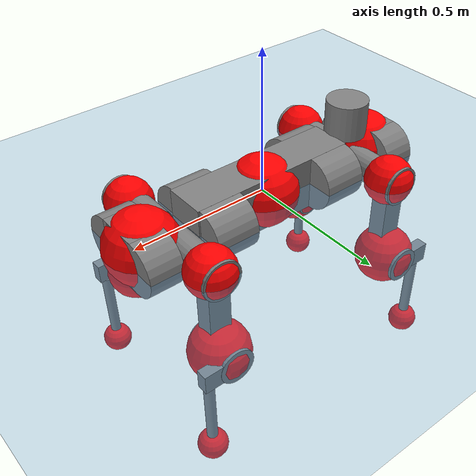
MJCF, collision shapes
<mujoco model="anymal_c">
  <compiler angle="radian" assetdir="assets" balanceinertia="true" inertiafromgeom="false"/>

  <option timestep="0.005" density="1.2" viscosity="2e-05"/>

  <size nkey="1"/>

  <visual>
    <quality shadowsize="8192"/>
    <map shadowclip="0.5"/>
  </visual>

  <default>
    <default class="/">
      <material specular="0" shininess="0.25"/>
      <geom contype="0" conaffinity="0" group="1" solref="-1000 -80"/>
      <site size="0.01 0.005 0.005" group="5"/>
      <general forcelimited="true" forcerange="-80 80" biastype="affine" gainprm="80" biasprm="0 -80 -2"/>
      <default class="anymal_c">
        <joint armature="0.01" damping="0.01" frictionloss="0.1"/>
        <default class="visual">
          <geom type="mesh" group="2"/>
          <default class="visual_zflip"/>
        </default>
        <default class="collision">
          <geom type="cylinder" group="3"/>
          <default class="foot">
            <geom size="0.03 0 0" type="sphere" condim="6" priority="1" friction="0.8 0.02 0.01" solimp="0.015 1 0.03"/>
          </default>
        </default>
      </default>
      <default class="reward_collision_sphere">
        <geom group="5" rgba="1 0 0 1"/>
      </default>
    </default>
  </default>

  <asset>
    <texture type="skybox" colorspace="auto" name="//unnamed_texture_0" builtin="gradient" rgb1="0.95 0.95 0.95" rgb2="0.95 0.95 0.95" width="100" height="600"/>
    <texture type="2d" colorspace="auto" name="texplane" builtin="checker" rgb1="0.345 0.575 0.748" rgb2="0.345 0.575 0.748" markrgb="1 1 1" width="512" height="512"/>
    <texture type="2d" colorspace="linear" name="base" file="base.png"/>
    <texture type="2d" colorspace="linear" name="top_shell" file="top_shell.png"/>
    <texture type="2d" colorspace="linear" name="bottom_shell" file="bottom_shell.png"/>
    <texture type="2d" colorspace="linear" name="remote" file="remote.png"/>
    <texture type="2d" colorspace="linear" name="hatch" file="hatch.png"/>
    <texture type="2d" colorspace="linear" name="handle" file="handle.png"/>
    <texture type="2d" colorspace="linear" name="face" file="face.png"/>
    <texture type="2d" colorspace="linear" name="battery" file="battery.png"/>
    <texture type="2d" colorspace="linear" name="lidar_cage" file="lidar_cage.png"/>
    <texture type="2d" colorspace="linear" name="depth_camera" file="depth_camera.png"/>
    <texture type="2d" colorspace="linear" name="wide_angle_camera" file="wide_angle_camera.png"/>
    <texture type="2d" colorspace="linear" name="lidar" file="lidar.png"/>
    <texture type="2d" colorspace="linear" name="drive" file="drive.png"/>
    <texture type="2d" colorspace="linear" name="hip_l" file="hip_l.png"/>
    <texture type="2d" colorspace="linear" name="shank_l" file="shank_l.png"/>
    <texture type="2d" colorspace="linear" name="foot" file="foot.png"/>
    <texture type="2d" colorspace="linear" name="thigh" file="thigh.png"/>
    <texture type="2d" colorspace="linear" name="shank_r" file="shank_r.png"/>
    <texture type="2d" colorspace="linear" name="hip_r" file="hip_r.png"/>
    <material name="MatPlane" class="/" texture="texplane" texuniform="true" texrepeat="2 2" specular="0.9" shininess="0.5"/>
    <material name="black_plastic" class="/" rgba="0.007 0.007 0.007 1"/>
    <material name="green" class="/" rgba="0.052 0.178 0.033 1"/>
    <material name="red" class="/" rgba="0.178 0.006 0.005 1"/>
    <material name="yellow" class="/" rgba="0.178 0.119 0.006 1"/>
    <material name="lwl" class="/" rgba="0.8 0.8 0.8 1"/>
    <material name="base" class="/" texture="base"/>
    <material name="top_shell" class="/" texture="top_shell"/>
    <material name="bottom_shell" class="/" texture="bottom_shell"/>
    <material name="hip_l" class="/" texture="hip_l"/>
    <material name="thigh" class="/" texture="thigh"/>
    <material name="shank_l" class="/" texture="shank_l"/>
    <material name="foot" class="/" texture="foot"/>
    <material name="hip_r" class="/" texture="hip_r"/>
    <material name="shank" class="/" texture="shank_r"/>
    <material name="hatch" class="/" texture="hatch"/>
    <material name="remote" class="/" texture="remote"/>
    <material name="handle" class="/" texture="handle"/>
    <material name="face" class="/" texture="face"/>
    <material name="depth_camera" class="/" texture="depth_camera"/>
    <material name="wide_angle_camera" class="/" texture="wide_angle_camera"/>
    <material name="battery" class="/" texture="battery"/>
    <material name="lidar_cage" class="/" texture="lidar_cage"/>
    <material name="lidar" class="/" texture="lidar"/>
    <material name="drive" class="/" texture="drive"/>
    <mesh name="base_0" class="/" file="base_0.obj"/>
    <mesh name="base_1" class="/" file="base_1.obj"/>
    <mesh name="base_2" class="/" file="base_2.obj"/>
    <mesh name="base_3" class="/" file="base_3.obj"/>
    <mesh name="base_4" class="/" file="base_4.obj"/>
    <mesh name="base_5" class="/" file="base_5.obj"/>
    <mesh name="top_shell" class="/" file="top_shell.obj"/>
    <mesh name="bottom_shell" class="/" file="bottom_shell.obj"/>
    <mesh name="remote" class="/" file="remote.obj"/>
    <mesh name="handle" class="/" file="handle.obj"/>
    <mesh name="face" class="/" file="face.obj"/>
    <mesh name="wide_angle_camera" class="/" file="wide_angle_camera.obj"/>
    <mesh name="depth_camera" class="/" file="depth_camera.obj"/>
    <mesh name="battery" class="/" file="battery.obj"/>
    <mesh name="lidar_cage" class="/" file="lidar_cage.obj"/>
    <mesh name="lidar" class="/" file="lidar.obj"/>
    <mesh name="drive" class="/" file="drive.obj"/>
    <mesh name="hip_l" class="/" file="hip_l.obj"/>
    <mesh name="thigh" class="/" file="thigh.obj"/>
    <mesh name="shank_l" class="/" file="shank_l.obj"/>
    <mesh name="foot" class="/" file="foot.obj"/>
    <mesh name="hip_r" class="/" file="hip_r.obj"/>
    <mesh name="hatch" class="/" file="hatch.obj"/>
    <mesh name="shank_r" class="/" file="shank_r.obj"/>
  </asset>

  <worldbody>
    <geom name="floor" class="/" size="100 100 0.125" type="plane" group="0" material="MatPlane"/>
    <light name="toplight_shadow" class="/" pos="0 0 5" dir="0.0990148 0.0990148 -0.990148" type="directional" ambient="0.04 0.04 0.04" diffuse="0.55 0.55 0.55" specular="0.12 0.12 0.12"/>
    <light name="toplight_fill" class="/" pos="0 0 5" dir="0.0990148 0.0990148 -0.990148" type="directional" castshadow="false" ambient="0.04 0.04 0.04" diffuse="0.3 0.3 0.3" specular="0.08 0.08 0.08"/>
    <body name="trunk" childclass="anymal_c" pos="-0.000263119 -0.00279135 -0.000985772" quat="1 1.24715e-07 1.95358e-06 -4.88842e-06">
      <inertial pos="0.00271679 -0.0026882 0.0547599" quat="0.495779 0.498926 0.502226 0.503036" mass="22.5794" diaginertia="0.761291 0.847769 0.333988"/>
      <joint name="//unnamed_joint_0" type="free" armature="0" damping="0" frictionloss="0"/>
      <geom name="//unnamed_geom_1" class="visual" material="green" mesh="base_0"/>
      <geom name="//unnamed_geom_2" class="visual" material="yellow" mesh="base_1"/>
      <geom name="//unnamed_geom_3" class="visual" material="red" mesh="base_2"/>
      <geom name="//unnamed_geom_4" class="visual" material="black_plastic" mesh="base_3"/>
      <geom name="//unnamed_geom_5" class="visual" material="lwl" mesh="base_4"/>
      <geom name="//unnamed_geom_6" class="visual" material="base" mesh="base_5"/>
      <geom name="trunk_1" class="collision" size="0.310434 0.0749324 0.0963416" type="box"/>
      <geom name="trunk_2" class="collision" size="0.0963416 0.0776085" pos="0.22729 0.0751098 0" quat="0.707107 0 0.707107 0"/>
      <geom name="trunk_3" class="collision" size="0.0963416 0.0776085" pos="-0.22729 0.0751098 0" quat="0.707107 0 0.707107 0"/>
      <geom name="trunk_4" class="collision" size="0.0963416 0.0776085" pos="0.22729 -0.0751098 0" quat="0.707107 0 0.707107 0"/>
      <geom name="trunk_5" class="collision" size="0.0963416 0.0776085" pos="-0.22729 -0.0751098 0" quat="0.707107 0 0.707107 0"/>
      <geom name="//unnamed_geom_12" class="visual" material="top_shell" mesh="top_shell"/>
      <geom name="//unnamed_geom_13" class="visual" material="bottom_shell" mesh="bottom_shell"/>
      <geom name="//unnamed_geom_14" class="visual" material="remote" mesh="remote"/>
      <geom name="//unnamed_geom_15" class="visual" material="handle" mesh="handle"/>
      <geom name="//unnamed_geom_16" class="visual" pos="0.433156 0 0" quat="1 0 0 0" material="face" mesh="face"/>
      <geom name="trunk_6" class="collision" size="0.0588754 0.0749324 0.0963416" pos="0.490632 0 0" type="box"/>
      <geom name="//unnamed_geom_18" class="collision" size="0.0963416 0.0588754" pos="0.490632 0.0751098 0" quat="0.707107 0 0.707107 0"/>
      <geom name="//unnamed_geom_19" class="collision" size="0.0963416 0.0588754" pos="0.490632 -0.0751098 0" quat="0.707107 0 0.707107 0"/>
      <geom name="//unnamed_geom_20" class="visual" pos="0.482431 0 -0.0322943" quat="0.965926 0 0.258819 0" material="depth_camera" mesh="depth_camera"/>
      <geom name="//unnamed_geom_21" class="visual" pos="0.53609 0 0.0163679" material="wide_angle_camera" mesh="wide_angle_camera"/>
      <geom name="//unnamed_geom_22" class="visual_zflip" pos="-0.433156 0 0" quat="0 0 0 1" material="face" mesh="face"/>
      <geom name="trunk_7" class="collision" size="0.0588754 0.0749324 0.0963416" pos="-0.490632 0 0" quat="0 0 0 1" type="box"/>
      <geom name="//unnamed_geom_24" class="collision" size="0.0963416 0.0588754" pos="-0.490632 -0.0751098 0" quat="0 -0.707107 0 0.707107"/>
      <geom name="//unnamed_geom_25" class="collision" size="0.0963416 0.0588754" pos="-0.490632 0.0751098 0" quat="0 -0.707107 0 0.707107"/>
      <geom name="//unnamed_geom_26" class="visual" pos="-0.482431 0 -0.0322943" quat="0 -0.258819 0 0.965926" material="depth_camera" mesh="depth_camera"/>
      <geom name="//unnamed_geom_27" class="visual_zflip" pos="-0.53609 0 0.0163679" quat="0 0 0 1" material="wide_angle_camera" mesh="wide_angle_camera"/>
      <geom name="//unnamed_geom_28" class="visual" material="battery" mesh="battery"/>
      <geom name="//unnamed_geom_29" class="visual" pos="0 0.0824106 0.0313951" quat="0.683013 -0.183013 0.183013 0.683013" material="depth_camera" mesh="depth_camera"/>
      <geom name="//unnamed_geom_30" class="visual" pos="0 -0.0824106 0.0313951" quat="0.683013 0.183013 0.183013 -0.683013" material="depth_camera" mesh="depth_camera"/>
      <geom name="//unnamed_geom_31" class="visual" pos="-0.380383 0 0.0803634" quat="1 0 0 0" material="lidar_cage" mesh="lidar_cage"/>
      <geom name="trunk_8" class="collision" size="0.0749324 0.0642277" pos="-0.380383 0 0.145966"/>
      <geom name="//unnamed_geom_33" class="visual" pos="-0.380383 1.09956e-05 0.155479" quat="0.707107 0 0 -0.707107" material="lidar" mesh="lidar"/>
      <geom name="//unnamed_geom_34" class="visual" pos="0.313398 0.111599 -3.5161e-10" quat="0.258819 0.965926 0 0" material="drive" mesh="drive"/>
      <geom name="//unnamed_geom_35" class="visual" pos="0.313398 -0.111599 3.5161e-10" quat="0.258819 -0.965926 0 0" material="drive" mesh="drive"/>
      <geom name="//unnamed_geom_36" class="visual" pos="-0.313398 0.111599 3.5161e-10" quat="0 0 0.965926 -0.258819" material="drive" mesh="drive"/>
      <geom name="//unnamed_geom_37" class="visual" pos="-0.313398 -0.111599 -3.5161e-10" quat="0 0 -0.965926 -0.258819" material="drive" mesh="drive"/>
      <geom name="//unnamed_geom_38" class="visual" pos="0.121221 0 0.0798167" quat="1 0 0 0" material="hatch" mesh="hatch"/>
      <geom name="//unnamed_geom_39" class="reward_collision_sphere" size="0.128455"/>
      <geom name="//unnamed_geom_40" class="reward_collision_sphere" size="0.128455" pos="0.470254 0 0"/>
      <geom name="//unnamed_geom_41" class="reward_collision_sphere" size="0.128455" pos="-0.470254 0 0"/>
      <site name="imu" pos="0.274106 0.021745 0.0366359" size="0.0107046"/>
      <camera name="track" pos="0 -2.14599 0" quat="0.707107 0.707107 0 0" mode="trackcom"/>
      <camera name="ego_camera" pos="0.470254 0 -0.0437352" quat="-0.5 -0.5 0.5 0.5"/>
      <body name="LF_HIP" pos="0.316629 0.113145 0.00236608" quat="0.260078 0.965588 0.000216479 -0.000194391">
        <inertial pos="0.0602414 -0.0163431 -0.00680223" quat="-0.125822 0.713308 -0.134852 0.676148" mass="3.2858" diaginertia="0.00729112 0.00668963 0.00512004"/>
        <joint name="LF_HAA" pos="0 0 0" axis="1 -0.000775605 -6.76988e-05" stiffness="0.00627454" range="-0.696394 0.533939" armature="0.0108679" damping="0" frictionloss="0.122031"/>
        <geom name="//unnamed_geom_42" class="visual" pos="0 -2.06836e-05 3.39727e-06" quat="0.258819 -0.965926 0 0" material="hip_l" mesh="hip_l"/>
        <geom name="//unnamed_geom_43" class="visual" pos="0.0625961 -0.0762242 -0.0441588" quat="0.183013 -0.683013 0.683013 0.183013" material="drive" mesh="drive"/>
        <geom name="//unnamed_geom_44" class="collision" size="0.0535231 0.0749324" pos="0.0625961 -0.0128328 -0.00754979" quat="-0.353553 -0.612372 0.612372 -0.353553"/>
        <body name="LF_THIGH" pos="0.0628863 -0.0767233 -0.0455864" quat="0.183913 -0.68351 0.682131 0.183538">
          <inertial pos="0.0352031 0.00271098 -0.269441" quat="0.994286 -0.011461 -0.0715671 0.078377" mass="3.76501" diaginertia="0.0370335 0.0422112 0.00645451"/>
          <joint name="LF_HFE" pos="0 0 0" axis="0.999913 -0.0105969 0.00783039" range="-3.10539 3.18197" armature="0.0121503" damping="0.0064813" frictionloss="0.114385"/>
          <geom name="//unnamed_geom_45" class="visual" pos="-0.000556846 -8.77459e-07 0" quat="0.707107 0 0 -0.707107" material="thigh" mesh="thigh"/>
          <geom name="//unnamed_geom_46" class="collision" size="0.06958 0.0428185" pos="0.0418004 0 0" quat="0.5 0.5 -0.5 -0.5"/>
          <geom name="//unnamed_geom_47" class="collision" size="0.0401423 0.0321139 0.151271" pos="0.0313503 0 -0.15451" quat="0.707107 0 0 -0.707107" type="box"/>
          <geom name="//unnamed_geom_48" class="visual" pos="0.104814 0 -0.311613" quat="1 0 0 0" material="drive" mesh="drive"/>
          <geom name="//unnamed_geom_49" class="collision" size="0.0535231 0.0749324" pos="0.0316638 0 -0.311613" quat="0.707107 0 0.707107 0"/>
          <geom name="//unnamed_geom_50" class="reward_collision_sphere" size="0.085637" pos="0.0261252 0 0"/>
          <body name="LF_SHANK" pos="0.103914 -0.00222507 -0.313772" quat="0.999999 0.00116198 -0.000332526 0.000431706">
            <inertial pos="0.00851888 -0.0657661 -0.0897983" quat="0.992837 -0.116631 -0.000563779 -0.0259162" mass="0.734365" diaginertia="0.0122736 0.0135146 0.00171727"/>
            <joint name="LF_KFE" pos="0 0 0" axis="0.999989 -0.000691008 -0.00470693" range="-3.17372 3.14982" armature="0.00923737" damping="0.00979012" frictionloss="0.108679"/>
            <geom name="//unnamed_geom_51" class="visual" pos="-0.000181575 -0.000968169 0" quat="0.707107 0 0 -0.707107" material="shank_l" mesh="shank_l"/>
            <geom name="LF_kfe_act" class="collision" size="0.0642277 0.0214092" pos="0.0209002 0 0" quat="0.5 0.5 -0.5 -0.5"/>
            <geom name="//unnamed_geom_53" class="collision" size="0.0615505 0.0361281 0.0203388" pos="0.0209002 -0.0616963 0" quat="0.5 0.5 -0.5 -0.5" type="box"/>
            <geom name="//unnamed_geom_54" class="visual" pos="0.0136374 -0.0946821 -0.36953" quat="0.382683 0 0 -0.92388" material="foot" mesh="foot"/>
            <geom name="LF_calf" class="collision" size="0.0187331 0.151205" pos="0.0136374 -0.0943701 -0.184765" quat="0.707107 0 0 -0.707107"/>
            <geom name="LF_foot" class="foot" size="0.0303274" pos="0.0136374 -0.0943701 -0.344929" quat="0.707107 0 0 -0.707107"/>
            <geom name="//unnamed_geom_57" class="reward_collision_sphere" size="0.107046" pos="-0.0522505 0 0"/>
            <geom name="//unnamed_geom_58" class="reward_collision_sphere" size="0.0535231" pos="0.0136374 -0.0943701 -0.344929"/>
            <site name="LF_foot" class="foot" pos="0.0136374 -0.0943701 -0.344929" quat="0.707107 0 0 -0.707107" size="0.0107046"/>
          </body>
        </body>
      </body>
      <body name="RF_HIP" pos="0.313371 -0.113816 -0.00144469" quat="0.258792 -0.965933 0.000110002 -0.000385796">
        <inertial pos="0.0581972 0.0166498 -0.00929618" quat="0.136908 0.680768 0.128465 0.708031" mass="3.26723" diaginertia="0.00715608 0.00682018 0.00525694"/>
        <joint name="RF_HAA" pos="0 0 0" axis="0.999877 -0.0109067 0.011279" range="-0.493028 0.716596" armature="0.0110079" damping="0.0134515" frictionloss="0.113007"/>
        <geom name="//unnamed_geom_59" class="visual" pos="0 2.06835e-05 3.39726e-06" quat="0.258819 0.965926 0 0" material="hip_r" mesh="hip_r"/>
        <geom name="//unnamed_geom_60" class="visual" pos="0.0625961 0.0762242 -0.0441588" quat="0.183013 0.683013 0.683013 -0.183013" material="drive" mesh="drive"/>
        <geom name="//unnamed_geom_61" class="collision" size="0.0535231 0.0749324" pos="0.0625961 0.0128328 -0.00754979" quat="-0.353553 0.612372 0.612372 0.353553"/>
        <body name="RF_THIGH" pos="0.0648461 0.0786932 -0.0434411" quat="0.183374 0.683968 0.682046 -0.18269">
          <inertial pos="0.0301063 -0.00141323 -0.267905" quat="0.992262 -0.0114569 -0.0745097 0.0986541" mass="4.02944" diaginertia="0.038509 0.044034 0.006633"/>
          <joint name="RF_HFE" pos="0 0 0" axis="0.999964 -0.00335448 0.00773462" range="-3.18284 3.13768" armature="0.0101407" damping="0.0114444" frictionloss="0.10761"/>
          <geom name="//unnamed_geom_62" class="visual" pos="-0.000556846 -8.77459e-07 0" quat="0.707107 0 0 -0.707107" material="thigh" mesh="thigh"/>
          <geom name="//unnamed_geom_63" class="collision" size="0.06958 0.0428185" pos="0.0418004 0 0" quat="0.5 0.5 0.5 0.5"/>
          <geom name="//unnamed_geom_64" class="collision" size="0.0401423 0.0321139 0.151271" pos="0.0313503 0 -0.15451" quat="0.707107 0 0 0.707107" type="box"/>
          <geom name="//unnamed_geom_65" class="visual" pos="0.104814 0 -0.311613" quat="1 0 0 0" material="drive" mesh="drive"/>
          <geom name="//unnamed_geom_66" class="collision" size="0.0535231 0.0749324" pos="0.0316638 0 -0.311613" quat="0.707107 0 0.707107 0"/>
          <geom name="//unnamed_geom_67" class="reward_collision_sphere" size="0.085637" pos="0.0261252 0 0"/>
          <body name="RF_SHANK" pos="0.102625 -0.00158799 -0.314032" quat="0.999999 -0.000323575 0.0012231 0.000338877">
            <inertial pos="0.00744549 0.065757 -0.0851771" quat="0.99184 0.121926 0.00164797 0.0372001" mass="0.712929" diaginertia="0.0126245 0.0131109 0.00176601"/>
            <joint name="RF_KFE" pos="0 0 0" axis="0.999955 -0.00732912 -0.00605586" range="-3.14537 3.14685" armature="0.011751" damping="0.0207318" frictionloss="0.0933174"/>
            <geom name="//unnamed_geom_68" class="visual" pos="-0.000181574 0.000968167 0" quat="0.707107 0 0 0.707107" material="shank" mesh="shank_r"/>
            <geom name="RF_kfe_act" class="collision" size="0.0642277 0.0214092" pos="0.0209002 0 0" quat="0.5 0.5 0.5 0.5"/>
            <geom name="//unnamed_geom_70" class="collision" size="0.0615505 0.0361281 0.0203388" pos="0.0209002 0.0616963 0" quat="0.5 0.5 0.5 0.5" type="box"/>
            <geom name="//unnamed_geom_71" class="visual" pos="0.0136373 0.0946821 -0.36953" quat="0.382683 0 0 0.92388" material="foot" mesh="foot"/>
            <geom name="RF_calf" class="collision" size="0.0187331 0.151205" pos="0.0136374 0.0943701 -0.184765" quat="0.707107 0 0 0.707107"/>
            <geom name="RF_foot" class="foot" size="0.0257395" pos="0.0136374 0.0943701 -0.344929" quat="0.707107 0 0 0.707107"/>
            <geom name="//unnamed_geom_74" class="reward_collision_sphere" size="0.107046" pos="-0.0522505 0 0"/>
            <geom name="//unnamed_geom_75" class="reward_collision_sphere" size="0.0535231" pos="0.0136374 0.0943701 -0.344929"/>
            <site name="RF_foot" class="foot" pos="0.0136374 0.0943701 -0.344929" quat="0.707107 0 0 0.707107" size="0.0107046"/>
          </body>
        </body>
      </body>
      <body name="LH_HIP" pos="-0.313808 0.111861 0.00141274" quat="-0.000839584 -0.000152078 0.965915 -0.258858">
        <inertial pos="0.0599058 0.0135837 -0.00668838" quat="0.137453 0.678049 0.128583 0.710509" mass="3.50621" diaginertia="0.00744609 0.00713917 0.00522342"/>
        <joint name="LH_HAA" pos="0 0 0" axis="0.999999 0.00030937 0.00169341" range="-0.501614 0.691365" armature="0.0106652" damping="0.00515169" frictionloss="0.104109"/>
        <geom name="//unnamed_geom_76" class="visual" pos="0 2.06835e-05 3.39726e-06" quat="-0.258819 -0.965926 0 0" material="hip_r" mesh="hip_r"/>
        <geom name="//unnamed_geom_77" class="visual" pos="0.0625961 0.0762242 -0.0441588" quat="0.183013 0.683013 0.683013 -0.183013" material="drive" mesh="drive"/>
        <geom name="//unnamed_geom_78" class="collision" size="0.0535231 0.0749324" pos="0.0625961 0.0128328 -0.00754979" quat="-0.353553 0.612372 0.612372 0.353553"/>
        <body name="LH_THIGH" pos="0.0591349 0.0800125 -0.0467238" quat="0.182886 0.68305 0.683003 -0.183037">
          <inertial pos="0.0327294 0.00103263 -0.270404" quat="0.992081 -0.0166083 -0.0808323 0.0946856" mass="3.88729" diaginertia="0.0382137 0.0441432 0.00672691"/>
          <joint name="LH_HFE" pos="0 0 0" axis="0.999993 -0.000306783 0.00368108" stiffness="0.00184519" range="-3.19795 3.19395" armature="0.00999116" damping="0" frictionloss="0.112531"/>
          <geom name="//unnamed_geom_79" class="visual" pos="-0.000556846 -8.77459e-07 0" quat="0.707107 0 0 -0.707107" material="thigh" mesh="thigh"/>
          <geom name="//unnamed_geom_80" class="collision" size="0.06958 0.0428185" pos="0.0418004 0 0" quat="0.5 0.5 -0.5 -0.5"/>
          <geom name="//unnamed_geom_81" class="collision" size="0.0401423 0.0321139 0.151271" pos="0.0313503 0 -0.15451" quat="0.707107 0 0 -0.707107" type="box"/>
          <geom name="//unnamed_geom_82" class="visual" pos="0.104814 0 -0.311613" quat="1 0 0 0" material="drive" mesh="drive"/>
          <geom name="//unnamed_geom_83" class="collision" size="0.0535231 0.0749324" pos="0.0316638 0 -0.311613" quat="0.707107 0 0.707107 0"/>
          <geom name="//unnamed_geom_84" class="reward_collision_sphere" size="0.085637" pos="0.0261252 0 0"/>
          <body name="LH_SHANK" pos="0.102186 -0.000956687 -0.310816" quat="1 2.04593e-05 -8.88395e-05 -8.16842e-05">
            <inertial pos="0.00672153 0.0658866 -0.0871043" quat="0.993221 0.113405 -0.00167316 0.0254715" mass="0.770883" diaginertia="0.0134942 0.0136759 0.00180013"/>
            <joint name="LH_KFE" pos="0 0 0" axis="0.99985 -0.000500495 -0.0173108" range="-3.11199 3.08426" armature="0.0107687" damping="0" frictionloss="0.10483"/>
            <geom name="//unnamed_geom_85" class="visual" pos="-0.000181574 0.000968167 0" quat="-0.707107 0 0 -0.707107" material="shank" mesh="shank_r"/>
            <geom name="LH_kfe_act" class="collision" size="0.0642277 0.0214092" pos="0.0209002 0 0" quat="0.5 0.5 -0.5 -0.5"/>
            <geom name="//unnamed_geom_87" class="collision" size="0.0615505 0.0361281 0.0203388" pos="0.0209002 0.0616963 0" quat="0.5 0.5 -0.5 -0.5" type="box"/>
            <geom name="//unnamed_geom_88" class="visual" pos="0.0136373 0.0946821 -0.36953" quat="-0.382683 0 0 -0.92388" material="foot" mesh="foot"/>
            <geom name="LH_calf" class="collision" size="0.0187331 0.151205" pos="0.0136374 0.0943701 -0.184765" quat="0.707107 0 0 -0.707107"/>
            <geom name="LH_foot" class="foot" size="0.0349588" pos="0.0136374 0.0943701 -0.344929" quat="0.707107 0 0 -0.707107"/>
            <geom name="//unnamed_geom_91" class="reward_collision_sphere" size="0.107046" pos="-0.0522505 0 0"/>
            <geom name="//unnamed_geom_92" class="reward_collision_sphere" size="0.0535231" pos="0.0136374 0.0943701 -0.344929"/>
            <site name="LH_foot" class="foot" pos="0.0136374 0.0943701 -0.344929" quat="0.707107 0 0 -0.707107" size="0.0107046"/>
          </body>
        </body>
      </body>
      <body name="RH_HIP" pos="-0.313086 -0.110181 -0.000902801" quat="-4.00725e-05 0.00116479 -0.965769 -0.259403">
        <inertial pos="0.0594479 -0.0139146 -0.0120547" quat="-0.127978 0.709783 -0.135277 0.67936" mass="3.5046" diaginertia="0.00779886 0.0073418 0.0054493"/>
        <joint name="RH_HAA" pos="0 0 0" axis="0.999934 0.00845592 -0.00775237" stiffness="0.000261963" range="-0.702743 0.448214" armature="0.0107034" damping="0.0126947" frictionloss="0.101456"/>
        <geom name="//unnamed_geom_93" class="visual" pos="0 -2.06836e-05 3.39727e-06" quat="-0.258819 0.965926 0 0" material="hip_l" mesh="hip_l"/>
        <geom name="//unnamed_geom_94" class="visual" pos="0.0625961 -0.0762242 -0.0441588" quat="-0.183013 0.683013 -0.683013 -0.183013" material="drive" mesh="drive"/>
        <geom name="//unnamed_geom_95" class="collision" size="0.0535231 0.0749324" pos="0.0625961 -0.0128328 -0.00754979" quat="0.353553 0.612372 -0.612372 0.353553"/>
        <body name="RH_THIGH" pos="0.0620887 -0.07522 -0.0443719" quat="-0.181968 0.683216 -0.683171 -0.182702">
          <inertial pos="0.0324251 -0.00221226 -0.265766" quat="0.99318 -0.00606625 -0.0813763 0.0832753" mass="3.62387" diaginertia="0.0360091 0.041056 0.00632846"/>
          <joint name="RH_HFE" pos="0 0 0" axis="0.999939 -0.00450958 0.0101077" range="-3.15392 3.19711" armature="0.0109897" damping="0.00992414" frictionloss="0.103327"/>
          <geom name="//unnamed_geom_96" class="visual" pos="-0.000556846 -8.77459e-07 0" quat="0.707107 0 0 -0.707107" material="thigh" mesh="thigh"/>
          <geom name="//unnamed_geom_97" class="collision" size="0.06958 0.0428185" pos="0.0418004 0 0" quat="0.5 0.5 0.5 0.5"/>
          <geom name="//unnamed_geom_98" class="collision" size="0.0401423 0.0321139 0.151271" pos="0.0313503 0 -0.15451" quat="0.707107 0 0 0.707107" type="box"/>
          <geom name="//unnamed_geom_99" class="visual" pos="0.104814 0 -0.311613" quat="1 0 0 0" material="drive" mesh="drive"/>
          <geom name="//unnamed_geom_100" class="collision" size="0.0535231 0.0749324" pos="0.0316638 0 -0.311613" quat="0.707107 0 0.707107 0"/>
          <geom name="//unnamed_geom_101" class="reward_collision_sphere" size="0.085637" pos="0.0261252 0 0"/>
          <body name="RH_SHANK" pos="0.104098 -0.000271055 -0.312648" quat="0.999999 -0.000747662 -0.00033133 -0.000656897">
            <inertial pos="0.00689738 -0.0655188 -0.0887491" quat="0.993396 -0.110803 0.00142417 -0.0297668" mass="0.732959" diaginertia="0.0131014 0.0131335 0.00174999"/>
            <joint name="RH_KFE" pos="0 0 0" axis="0.99996 0.00530076 0.00723713" range="-3.18359 3.17813" armature="0.00944104" damping="0.00923203" frictionloss="0.109895"/>
            <geom name="//unnamed_geom_102" class="visual" pos="-0.000181575 -0.000968169 0" quat="0.707107 0 0 -0.707107" material="shank_l" mesh="shank_l"/>
            <geom name="RH_kfe_act" class="collision" size="0.0642277 0.0214092" pos="0.0209002 0 0" quat="0.5 0.5 0.5 0.5"/>
            <geom name="//unnamed_geom_104" class="collision" size="0.0615505 0.0361281 0.0203388" pos="0.0209002 -0.0616963 0" quat="0.5 0.5 0.5 0.5" type="box"/>
            <geom name="//unnamed_geom_105" class="visual" pos="0.0136374 -0.0946821 -0.36953" quat="0.382683 0 0 -0.92388" material="foot" mesh="foot"/>
            <geom name="RH_calf" class="collision" size="0.0187331 0.151205" pos="0.0136374 -0.0943701 -0.184765" quat="0.707107 0 0 0.707107"/>
            <geom name="RH_foot" class="foot" size="0.028124" pos="0.0136374 -0.0943701 -0.344929" quat="0.707107 0 0 0.707107"/>
            <geom name="//unnamed_geom_108" class="reward_collision_sphere" size="0.107046" pos="-0.0522505 0 0"/>
            <geom name="//unnamed_geom_109" class="reward_collision_sphere" size="0.0535231" pos="0.0136374 -0.0943701 -0.344929"/>
            <site name="RH_foot" class="foot" pos="0.0136374 -0.0943701 -0.344929" quat="0.707107 0 0 0.707107" size="0.0107046"/>
          </body>
        </body>
      </body>
    </body>
  </worldbody>

  <contact>
    <pair class="/" geom1="floor" geom2="LF_foot" name="//unnamed_contact_0"/>
    <pair class="/" geom1="floor" geom2="RF_foot" name="//unnamed_contact_1"/>
    <pair class="/" geom1="floor" geom2="LH_foot" name="//unnamed_contact_2"/>
    <pair class="/" geom1="floor" geom2="RH_foot" name="//unnamed_contact_3"/>
  </contact>

  <actuator>
    <general name="LF_HAA" class="/" joint="LF_HAA" forcerange="-89.371 89.371" gainprm="90.4878" biasprm="0 -90.4878 -2.26007"/>
    <general name="LF_HFE" class="/" joint="LF_HFE" forcerange="-76.7555 76.7555" gainprm="90.4878" biasprm="0 -90.4878 -2.26007"/>
    <general name="LF_KFE" class="/" joint="LF_KFE" forcerange="-86.8944 86.8944" gainprm="90.4878" biasprm="0 -90.4878 -2.26007"/>
    <general name="RF_HAA" class="/" joint="RF_HAA" forcerange="-92.59 92.59" gainprm="90.4878" biasprm="0 -90.4878 -2.26007"/>
    <general name="RF_HFE" class="/" joint="RF_HFE" forcerange="-93.2391 93.2391" gainprm="90.4878" biasprm="0 -90.4878 -2.26007"/>
    <general name="RF_KFE" class="/" joint="RF_KFE" forcerange="-95.2329 95.2329" gainprm="90.4878" biasprm="0 -90.4878 -2.26007"/>
    <general name="LH_HAA" class="/" joint="LH_HAA" forcerange="-88.3082 88.3082" gainprm="90.4878" biasprm="0 -90.4878 -2.26007"/>
    <general name="LH_HFE" class="/" joint="LH_HFE" forcerange="-84.3881 84.3881" gainprm="90.4878" biasprm="0 -90.4878 -2.26007"/>
    <general name="LH_KFE" class="/" joint="LH_KFE" forcerange="-79.5374 79.5374" gainprm="90.4878" biasprm="0 -90.4878 -2.26007"/>
    <general name="RH_HAA" class="/" joint="RH_HAA" forcerange="-80.1445 80.1445" gainprm="90.4878" biasprm="0 -90.4878 -2.26007"/>
    <general name="RH_HFE" class="/" joint="RH_HFE" forcerange="-88.7882 88.7882" gainprm="90.4878" biasprm="0 -90.4878 -2.26007"/>
    <general name="RH_KFE" class="/" joint="RH_KFE" forcerange="-85.7809 85.7809" gainprm="90.4878" biasprm="0 -90.4878 -2.26007"/>
  </actuator>

  <sensor>
    <gyro site="imu" name="imu_angular_velocity"/>
    <velocimeter site="imu" name="imu_linear_velocity"/>
    <framelinvel objtype="site" objname="LF_foot" name="LF_foot_global_linear_velocity"/>
    <framelinvel objtype="site" objname="RF_foot" name="RF_foot_global_linear_velocity"/>
    <framelinvel objtype="site" objname="LH_foot" name="LH_foot_global_linear_velocity"/>
    <framelinvel objtype="site" objname="RH_foot" name="RH_foot_global_linear_velocity"/>
  </sensor>

  <keyframe>
    <key name="home" qpos="0 0 0.55 1 0 0 0 0 0.4 -0.8 0 -0.4 0.8 0 -0.4 0.8 0 0.4 -0.8"/>
  </keyframe>
</mujoco>
